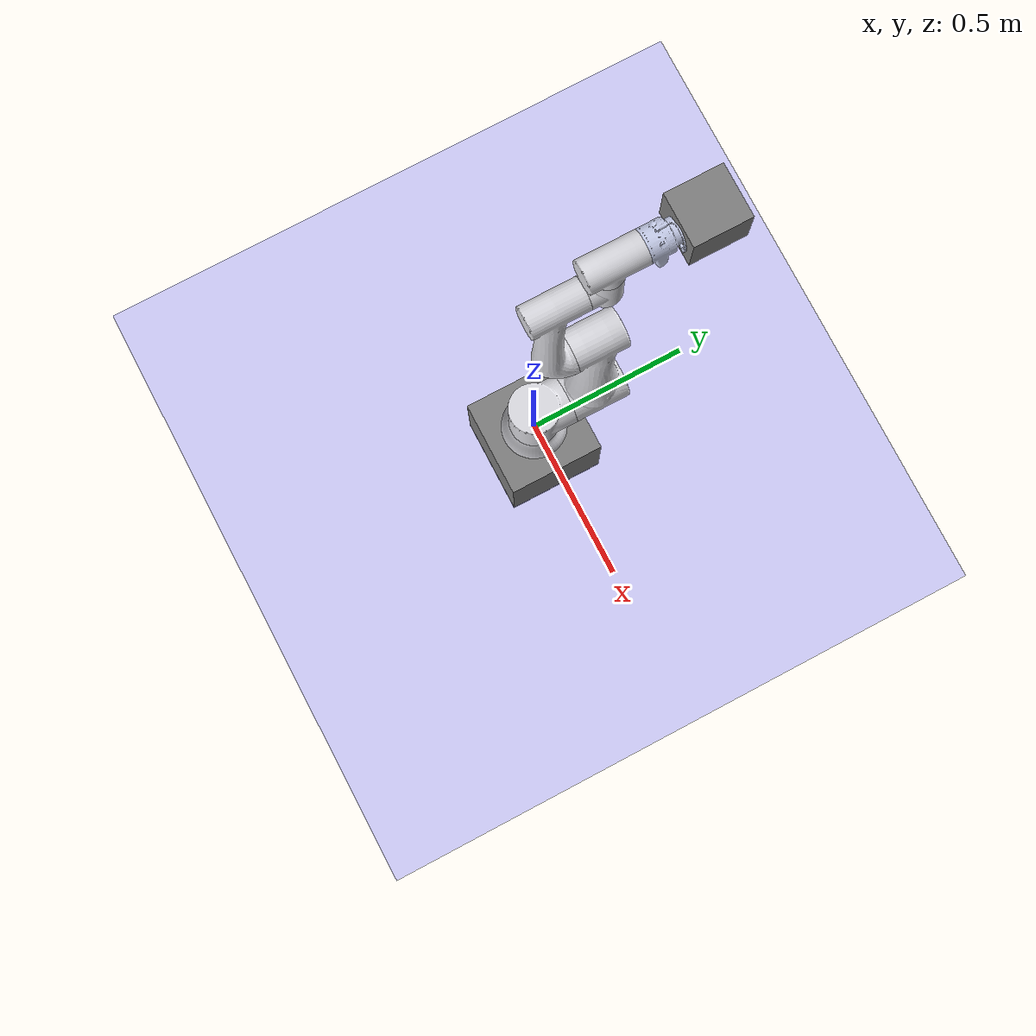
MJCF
<mujoco model="sbot">
  <compiler angle="radian"/>

  <asset>
    <mesh name="base_link" file="meshes/sbot/collision/base_link.STL"/>
    <mesh name="shoulder_link" file="meshes/sbot/collision/shoulder_link.STL"/>
    <mesh name="upper_arm_link" file="meshes/sbot/collision/upper_arm_link.STL"/>
    <mesh name="forearm_link" file="meshes/sbot/collision/forearm_link.STL"/>
    <mesh name="wrist_1_link" file="meshes/sbot/collision/wrist_1_link.STL"/>
    <mesh name="wrist_2_link" file="meshes/sbot/collision/wrist_2_link.STL"/>
    <mesh name="wrist_3_link" file="meshes/sbot/collision/wrist_3_link.STL"/>
  </asset>

  <worldbody>
    <body name="sbot" pos="0 0 0">
      <geom quat="0.707107 0 0 -0.707107" type="mesh" contype="0" conaffinity="0" group="1" density="0" rgba="0.86667 0.86667 0.8902 1" mesh="base_link"/>
      <geom quat="0.707107 0 0 -0.707107" type="mesh" rgba="0.86667 0.86667 0.8902 1" mesh="base_link"/>
      <geom size="0.15 0.15 0.15" pos="0 0 -0.1575" quat="0.707107 0 0 -0.707107" type="box"/>
      <geom size="0.15 0.15 0.15" pos="0 0 -0.1575" quat="0.707107 0 0 -0.707107" type="box" contype="0" conaffinity="0" group="1" density="0" rgba="0 0 1 0.1"/>
      <geom size="1 1 0.05" pos="0 0 -0.35" quat="0.707107 0 0 -0.707107" type="box" rgba="0 0 1 0.1"/>
      <geom size="1 1 0.05" pos="0 0 -0.35" quat="0.707107 0 0 -0.707107" type="box" contype="0" conaffinity="0" group="1" density="0" rgba="0 0 1 0.1"/>
      <body name="shoulder_link" pos="0 0 0.172" quat="0.707107 0 0 -0.707107">
        <inertial pos="-0.015506 5.31134e-06 0.00202666" quat="0.707744 0.00819027 0.00819366 0.706374" mass="7.48001" diaginertia="0.0296005 0.0290159 0.0236767"/>
        <joint name="sbot_joint0" pos="0 0 0" axis="0 0 1" range="-6.28319 6.28319" actuatorfrcrange="-346 346"/>
        <geom type="mesh" contype="0" conaffinity="0" group="1" density="0" rgba="0.866667 0.866667 0.890196 1" mesh="shoulder_link"/>
        <geom type="mesh" rgba="0.866667 0.866667 0.890196 1" mesh="shoulder_link"/>
        <body name="upper_arm_link" pos="-0.1885 0 0">
          <inertial pos="0.00037048 -1.0498e-06 0.24431" quat="0.707104 0.00419016 0.00419555 0.707085" mass="13.27" diaginertia="0.67925 0.673219 0.0370655"/>
          <joint name="sbot_joint1" pos="0 0 0" axis="-1 0 0" range="-2.35619 2.35619" actuatorfrcrange="-346 346"/>
          <geom type="mesh" contype="0" conaffinity="0" group="1" density="0" rgba="0.86667 0.86667 0.8902 1" mesh="upper_arm_link"/>
          <geom type="mesh" rgba="0.86667 0.86667 0.8902 1" mesh="upper_arm_link"/>
          <body name="forearm_link" pos="0.14635 0 0.5907">
            <inertial pos="-0.0085627 -0.000680804 0.284369" quat="0.71768 0.00484718 0.00408494 0.696344" mass="3.99016" diaginertia="0.185231 0.183525 0.00594995"/>
            <joint name="sbot_joint2" pos="0 0 0" axis="-1 0 0" range="-3.14159 3.14159" actuatorfrcrange="-163 163"/>
            <geom type="mesh" contype="0" conaffinity="0" group="1" density="0" rgba="0.866667 0.866667 0.890196 1" mesh="forearm_link"/>
            <geom type="mesh" rgba="0.866667 0.866667 0.890196 1" mesh="forearm_link"/>
            <body name="wrist_1_link" pos="-0.1498 0 0.5494">
              <inertial pos="0.00603382 5.30466e-05 0.00949427" quat="0.705615 -0.0107006 -0.0099924 0.708444" mass="2.34999" diaginertia="0.00569172 0.00536728 0.00279135"/>
              <joint name="sbot_joint3" pos="0 0 0" axis="-1 0 0" range="-6.28319 6.28319" actuatorfrcrange="-63 63"/>
              <geom type="mesh" contype="0" conaffinity="0" group="1" density="0" rgba="0.866667 0.866667 0.890196 1" mesh="wrist_1_link"/>
              <geom type="mesh" rgba="0.866667 0.866667 0.890196 1" mesh="wrist_1_link"/>
              <body name="wrist_2_link" pos="0 0 0.1498">
                <inertial pos="-0.00949427 -5.30466e-05 -0.00603382" quat="0.493379 0.506011 0.508512 0.491879" mass="2.34999" diaginertia="0.00569172 0.00536728 0.00279135"/>
                <joint name="sbot_joint4" pos="0 0 0" axis="0 0 1" range="-6.28319 6.28319" actuatorfrcrange="-63 63"/>
                <geom type="mesh" contype="0" conaffinity="0" group="1" density="0" rgba="0.866667 0.866667 0.890196 1" mesh="wrist_2_link"/>
                <geom type="mesh" rgba="0.866667 0.866667 0.890196 1" mesh="wrist_2_link"/>
                <body name="wrist_3_link" pos="-0.1767 0 0">
                  <inertial pos="-0.0596959 4.23114e-05 -0.000741538" quat="0.498223 0.500476 0.519237 0.481342" mass="3.84506" diaginertia="0.0208399 0.0207775 0.0121087"/>
                  <joint name="sbot_joint5" pos="0 0 0" axis="-1 0 0" range="-6.28319 6.28319" actuatorfrcrange="-63 63"/>
                  <geom type="mesh" contype="0" conaffinity="0" group="1" density="0" rgba="0.792157 0.819608 0.933333 1" mesh="wrist_3_link"/>
                  <geom type="mesh" rgba="0.792157 0.819608 0.933333 1" mesh="wrist_3_link"/>
                  <geom size="0.0723 0.0723 0.07825" pos="-0.0785 0 0" quat="0.5 0.5 -0.5 -0.5" type="box"/>
                  <body name="attachment" pos="0 0 0" quat="0 0 0 1">
                      <site name="attachment_site"/>
                  </body>
                </body>
              </body>
            </body>
          </body>
        </body>
      </body>
    </body>
  </worldbody>
  <actuator>
    <motor name="sbot_joint0" joint="sbot_joint0" ctrlrange="-320 320"/>
    <motor name="sbot_joint1" joint="sbot_joint1" ctrlrange="-320 320"/>
    <motor name="sbot_joint2" joint="sbot_joint2" ctrlrange="-176 176"/>
    <motor name="sbot_joint3" joint="sbot_joint3" ctrlrange="-176 176"/>
    <motor name="sbot_joint4" joint="sbot_joint4" ctrlrange="-110 110"/>
    <motor name="sbot_joint5" joint="sbot_joint5" ctrlrange="-40 40"/>
  </actuator>
</mujoco>
